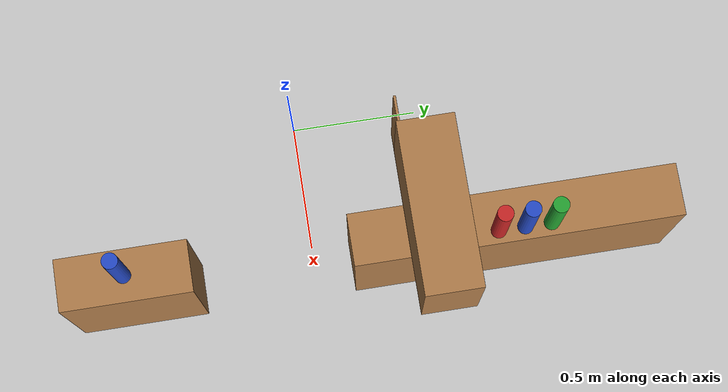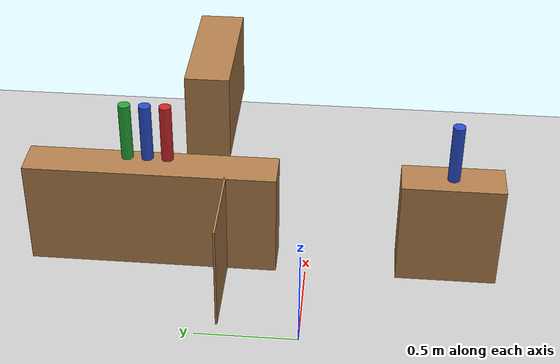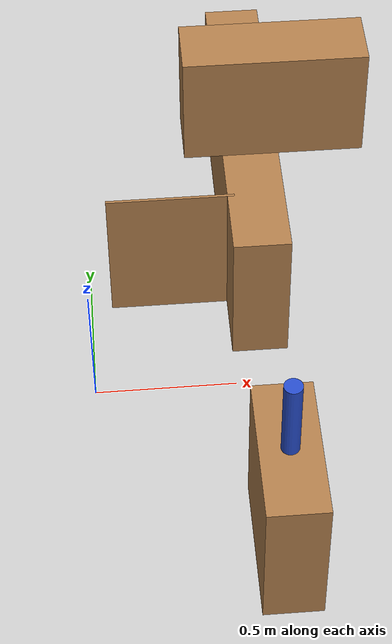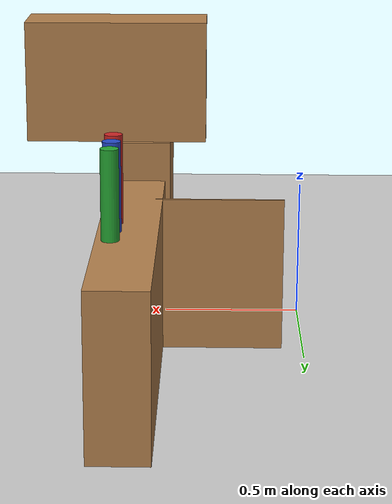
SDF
<?xml version="1.0" ?>
<sdf version="1.5">
  <world name="default">
    <include>
      <uri>model://sun</uri>
    </include>
    <include>
      <uri>model://ground_plane</uri>
    </include>
		<model name="base_A">
			<pose>0.6 -0.7 0.275 0 0 0</pose>
			<static>true</static>
			<link name="link">
				<collision name="surface">
					<pose>0.0 0.0 0.0 0 0 0</pose>
					<geometry>
						<box>
							<size>0.2 0.5 0.55</size>
						</box>
					</geometry>
					<surface>
						<friction>
							<ode>
								<mu>10</mu>
								<mu2>10</mu2>
							</ode>
						</friction>
					</surface>
				</collision>
				<visual name="visual1">
					<pose>0.0 0.0 0.0 0 0 0</pose>
					<geometry>
						<box>
							<size>0.2 0.5 0.55</size>
						</box>
					</geometry>
					<material>
						<script>
							<uri>file://media/materials/scripts/gazebo.material</uri>
							<name>Gazebo/Wood</name>
						</script>
					</material>
				</visual>
			</link>
		</model>
				<model name="base_B"> <!-- muevo todo 0.6 a la dcha -->
			<pose>0.6 0.775 0.275 0 0 0</pose>
			<static>true</static>
			<link name="link">
				<collision name="surface">
					<pose>0.0 0.0 0.0 0 0 0</pose>
					<geometry>
						<box>
							<size>0.2 1.25 0.55</size> <!--agrandp 25 cm por cada lado-->
						</box>
					</geometry>
					<surface>
						<friction>
							<ode>
								<mu>10</mu>
								<mu2>10</mu2>
							</ode>
						</friction>
					</surface>
				</collision>
				<visual name="visual1">
					<pose>0.0 0.0 0.0 0 0 0</pose>
					<geometry>
						<box>
							<size>0.2 1.25 0.55</size>
						</box>
					</geometry>
					<material>
						<script>
							<uri>file://media/materials/scripts/gazebo.material</uri>
							<name>Gazebo/Wood</name>
						</script>
					</material>
				</visual>
			</link>
		</model>
		<model name="Obstacle1_1">
			<pose>0.65 0.45 0.99 0 0 0</pose>
			<static>true</static>
			<link name="link">
				<collision name="surface">
					<pose>0.0 0.0 0.0 0 0 0</pose>
					<geometry>
						<box>
							<size>0.6 0.2 0.4</size>
						</box>
					</geometry>
					<surface>
						<friction>
							<ode>
								<mu>10</mu>
								<mu2>10</mu2>
							</ode>
						</friction>
					</surface>
				</collision>
				<visual name="visual1">
					<pose>0.0 0.0 0.0 0 0 0</pose>
					<geometry>
						<box>
							<size>0.6 0.2 0.4</size>
						</box>
					</geometry>
					<material>
						<script>
							<uri>file://media/materials/scripts/gazebo.material</uri>
							<name>Gazebo/Wood</name>
						</script>
					</material>
				</visual>
			</link>
		</model>
		<model name="Obstacle1_2">
			<pose>0.3 0.4 0.275 0 0 0</pose>
			<static>true</static>
			<link name="link">
				<collision name="surface">
					<pose>0.0 0.0 0.0 0 0 0</pose>
					<geometry>
						<box>
							<size>0.45 0.01 0.55</size>
						</box>
					</geometry>
					<surface>
						<friction>
							<ode>
								<mu>10</mu>
								<mu2>10</mu2>
							</ode>
						</friction>
					</surface>
				</collision>
				<visual name="visual1">
					<pose>0.0 0.0 0.0 0 0 0</pose>
					<geometry>
						<box>
							<size>0.45 0.01 0.55</size>
						</box>
					</geometry>
					<material>
						<script>
							<uri>file://media/materials/scripts/gazebo.material</uri>
							<name>Gazebo/Wood</name>
						</script>
					</material>
				</visual>
			</link>
		</model>
		<model name="my_cube_0">
			<pose>0.6 -0.7 0.7 0 0 0</pose>
			<static>false</static>
			<link name="link">
				<inertial>
					<mass>0.2</mass>
					<inertia> <!-- interias are tricky to compute -->
						<!-- http://answers.gazebosim.org/question/4372/the-inertia-matrix-explained/ -->
						<!-- for a box: ixx = 0.083 * mass * (y*y + z*z) -->
						<!-- for a box: ixy = 0 -->
						<!-- for a box: iyy = 0.083 * mass * (x*x + z*z) -->
						<!-- for a box: ixz = 0 -->
						<!-- for a box: izz = 0.083 * mass * (x*x + y*y) -->
						<!-- for a box: iyz = 0 -->
						<ixx>2.1248e-04</ixx>
						<ixy>0.0</ixy>
						<ixz>0.0</ixz>
						<iyy>1.3149e-04</iyy>
						<iyz>0.0</iyz>
						<izz>1.3149e-04</izz>

					</inertia>
				</inertial>
				<collision name="collision">
					<geometry>
						<cylinder>
							<radius>0.03</radius>
							<length>0.3</length>
						</cylinder>
					</geometry>
					<surface>
						<contact>
							<ode>
								<soft_cfm>0.2</soft_cfm>
								<soft_erp>0.2</soft_erp>
								<kp>1e5</kp>
								<kd>1.0</kd>
							</ode>
						</contact>

						<friction>
							<ode>
								<mu>1e10</mu>
								<mu2>1e10</mu2>
								<fdir1>0.000000 0.000000 1.000000</fdir1>
							</ode>
						</friction>
						<contact>
							<ode>
								<max_vel>0.1</max_vel>
								<min_depth>0.001</min_depth>
							</ode>
						</contact>
					</surface>
				</collision>
				<visual name="visual">
					<geometry>
						<cylinder>
							<radius>0.03</radius>
							<length>0.3</length>
						</cylinder>
					</geometry>
					<material>
						<script>
							<uri>file://media/materials/scripts/gazebo.material</uri>
							<name>Gazebo/Blue</name>
						</script>
					</material>
				</visual>
			</link>
		</model>
		<model name="my_cube_1">
			<pose>0.65 0.7 0.7 0 0 0</pose>
			<static>false</static>
			<link name="link">
				<inertial>
					<mass>0.2</mass>
					<inertia> <!-- interias are tricky to compute -->
						<!-- http://answers.gazebosim.org/question/4372/the-inertia-matrix-explained/ -->
						<!-- for a box: ixx = 0.083 * mass * (y*y + z*z) -->
						<!-- for a box: ixy = 0 -->
						<!-- for a box: iyy = 0.083 * mass * (x*x + z*z) -->
						<!-- for a box: ixz = 0 -->
						<!-- for a box: izz = 0.083 * mass * (x*x + y*y) -->
						<!-- for a box: iyz = 0 -->
						<ixx>2.1248e-04</ixx>
						<ixy>0.0</ixy>
						<ixz>0.0</ixz>
						<iyy>1.3149e-04</iyy>
						<iyz>0.0</iyz>
						<izz>1.3149e-04</izz>

					</inertia>
				</inertial>
				<collision name="collision">
					<geometry>
						<cylinder>
							<radius>0.03</radius>
							<length>0.3</length>
						</cylinder>
					</geometry>
					<surface>
						<contact>
							<ode>
								<soft_cfm>0.2</soft_cfm>
								<soft_erp>0.2</soft_erp>
								<kp>1e5</kp>
								<kd>1.0</kd>
							</ode>
						</contact>

						<friction>
							<ode>
								<mu>1e10</mu>
								<mu2>1e10</mu2>
								<fdir1>0.000000 0.000000 1.000000</fdir1>
							</ode>
						</friction>
						<contact>
							<ode>
								<max_vel>0.1</max_vel>
								<min_depth>0.001</min_depth>
							</ode>
						</contact>
					</surface>
				</collision>
				<visual name="visual">
					<geometry>
						<cylinder>
							<radius>0.03</radius>
							<length>0.3</length>
						</cylinder>
					</geometry>
					<material>
						<script>
							<uri>file://media/materials/scripts/gazebo.material</uri>
							<name>Gazebo/Red</name>
						</script>
					</material>
				</visual>
			</link>
		</model>
		<model name="my_cube_2">
			<pose>0.65 0.8 0.7 0 0 0</pose>
			<static>false</static>
			<link name="link">
				<inertial>
					<mass>0.2</mass>
					<inertia> <!-- interias are tricky to compute -->
						<!-- http://answers.gazebosim.org/question/4372/the-inertia-matrix-explained/ -->
						<!-- for a box: ixx = 0.083 * mass * (y*y + z*z) -->
						<!-- for a box: ixy = 0 -->
						<!-- for a box: iyy = 0.083 * mass * (x*x + z*z) -->
						<!-- for a box: ixz = 0 -->
						<!-- for a box: izz = 0.083 * mass * (x*x + y*y) -->
						<!-- for a box: iyz = 0 -->
						<ixx>2.1248e-04</ixx>
						<ixy>0.0</ixy>
						<ixz>0.0</ixz>
						<iyy>1.3149e-04</iyy>
						<iyz>0.0</iyz>
						<izz>1.3149e-04</izz>

					</inertia>
				</inertial>
				<collision name="collision">
					<geometry>
						<cylinder>
							<radius>0.03</radius>
							<length>0.3</length>
						</cylinder>
					</geometry>
					<surface>
						<contact>
							<ode>
								<soft_cfm>0.2</soft_cfm>
								<soft_erp>0.2</soft_erp>
								<kp>1e5</kp>
								<kd>1.0</kd>
							</ode>
						</contact>

						<friction>
							<ode>
								<mu>1e10</mu>
								<mu2>1e10</mu2>
								<fdir1>0.000000 0.000000 1.000000</fdir1>
							</ode>
						</friction>
						<contact>
							<ode>
								<max_vel>0.1</max_vel>
								<min_depth>0.001</min_depth>
							</ode>
						</contact>
					</surface>
				</collision>
				<visual name="visual">
					<geometry>
						<cylinder>
							<radius>0.03</radius>
							<length>0.3</length>
						</cylinder>
					</geometry>
					<material>
						<script>
							<uri>file://media/materials/scripts/gazebo.material</uri>
							<name>Gazebo/Blue</name>
						</script>
					</material>
				</visual>
			</link>
		</model>
		<model name="my_cube_3">
			<pose>0.65 0.9 0.7 0 0 0</pose>
			<static>false</static>
			<link name="link">
				<inertial>
					<mass>0.2</mass>
					<inertia> <!-- interias are tricky to compute -->
						<!-- http://answers.gazebosim.org/question/4372/the-inertia-matrix-explained/ -->
						<!-- for a box: ixx = 0.083 * mass * (y*y + z*z) -->
						<!-- for a box: ixy = 0 -->
						<!-- for a box: iyy = 0.083 * mass * (x*x + z*z) -->
						<!-- for a box: ixz = 0 -->
						<!-- for a box: izz = 0.083 * mass * (x*x + y*y) -->
						<!-- for a box: iyz = 0 -->
						<ixx>2.1248e-04</ixx>
						<ixy>0.0</ixy>
						<ixz>0.0</ixz>
						<iyy>1.3149e-04</iyy>
						<iyz>0.0</iyz>
						<izz>1.3149e-04</izz>

					</inertia>
				</inertial>
				<collision name="collision">
					<geometry>
						<cylinder>
							<radius>0.03</radius>
							<length>0.3</length>
						</cylinder>
					</geometry>
					<surface>
						<contact>
							<ode>
								<soft_cfm>0.2</soft_cfm>
								<soft_erp>0.2</soft_erp>
								<kp>1e5</kp>
								<kd>1.0</kd>
							</ode>
						</contact>

						<friction>
							<ode>
								<mu>1e10</mu>
								<mu2>1e10</mu2>
								<fdir1>0.000000 0.000000 1.000000</fdir1>
							</ode>
						</friction>
						<contact>
							<ode>
								<max_vel>0.1</max_vel>
								<min_depth>0.001</min_depth>
							</ode>
						</contact>
					</surface>
				</collision>
				<visual name="visual">
					<geometry>
						<cylinder>
							<radius>0.03</radius>
							<length>0.3</length>
						</cylinder>
					</geometry>
					<material>
						<script>
							<uri>file://media/materials/scripts/gazebo.material</uri>
							<name>Gazebo/Green</name>
						</script>
					</material>
				</visual>
			</link>
		</model>
  </world>
</sdf>
